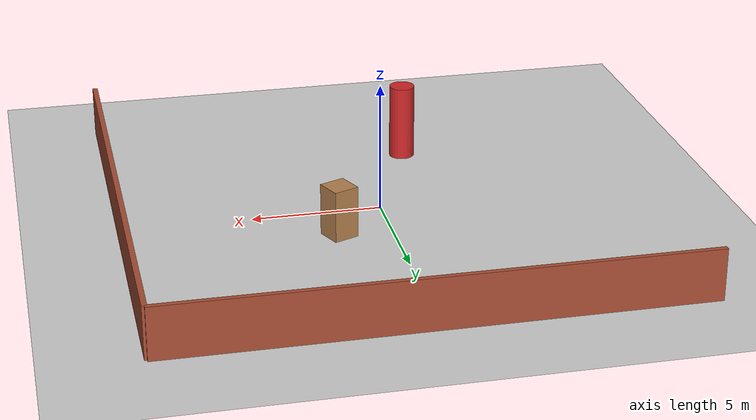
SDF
<sdf version="1.6">
 <world name="vins_world">
  <include><uri>model://sun</uri></include>
  <include><uri>model://ground_plane</uri></include>
  <model name="walls">
   <static>true</static>
   <link name="wall_1">
    <pose>0 10 1 0 0 0</pose>
    <visual name="wall_1_visual">
     <geometry><box><size>20 0.2 2</size></box></geometry>
     <material>
      <script><uri>file://media/materials/scripts/gazebo.material</uri><name>Gazebo/Bricks</name></script>
     </material>
    </visual>
    <collision name="wall_1_collision"><geometry><box><size>20 0.2 2</size></box></geometry></collision>
   </link>
   <link name="wall_2">
    <pose>10 0 1 0 0 1.5707</pose>
    <visual name="wall_2_visual">
     <geometry><box><size>20 0.2 2</size></box></geometry>
     <material>
      <script><uri>file://media/materials/scripts/gazebo.material</uri><name>Gazebo/Bricks</name></script>
     </material>
    </visual>
    <collision name="wall_2_collision"><geometry><box><size>20 0.2 2</size></box></geometry></collision>
   </link>
  </model>
  <model name="simple_box">
   <static>true</static>
   <pose>2 2 1 0 0 0.4</pose>
   <link name="link">
    <visual name="visual">
     <geometry><box><size>1 1 2</size></box></geometry>
     <material>
      <script><uri>file://media/materials/scripts/gazebo.material</uri><name>Gazebo/Wood</name></script>
     </material>
    </visual>
    <collision name="collision"><geometry><box><size>1 1 2</size></box></geometry></collision>
   </link>
  </model>
  <model name="simple_cylinder">
   <static>true</static>
   <pose>-2 -5 1.5 0 0 0</pose>
   <link name="link">
    <visual name="visual">
     <geometry><cylinder><radius>0.5</radius><length>3</length></cylinder></geometry>
     <material>
      <script><uri>file://media/materials/scripts/gazebo.material</uri><name>Gazebo/Red</name></script>
     </material>
    </visual>
    <collision name="collision">
     <geometry><cylinder><radius>0.5</radius><length>3</length></cylinder></geometry>
    </collision>
   </link>
  </model>
 </world>
</sdf>
